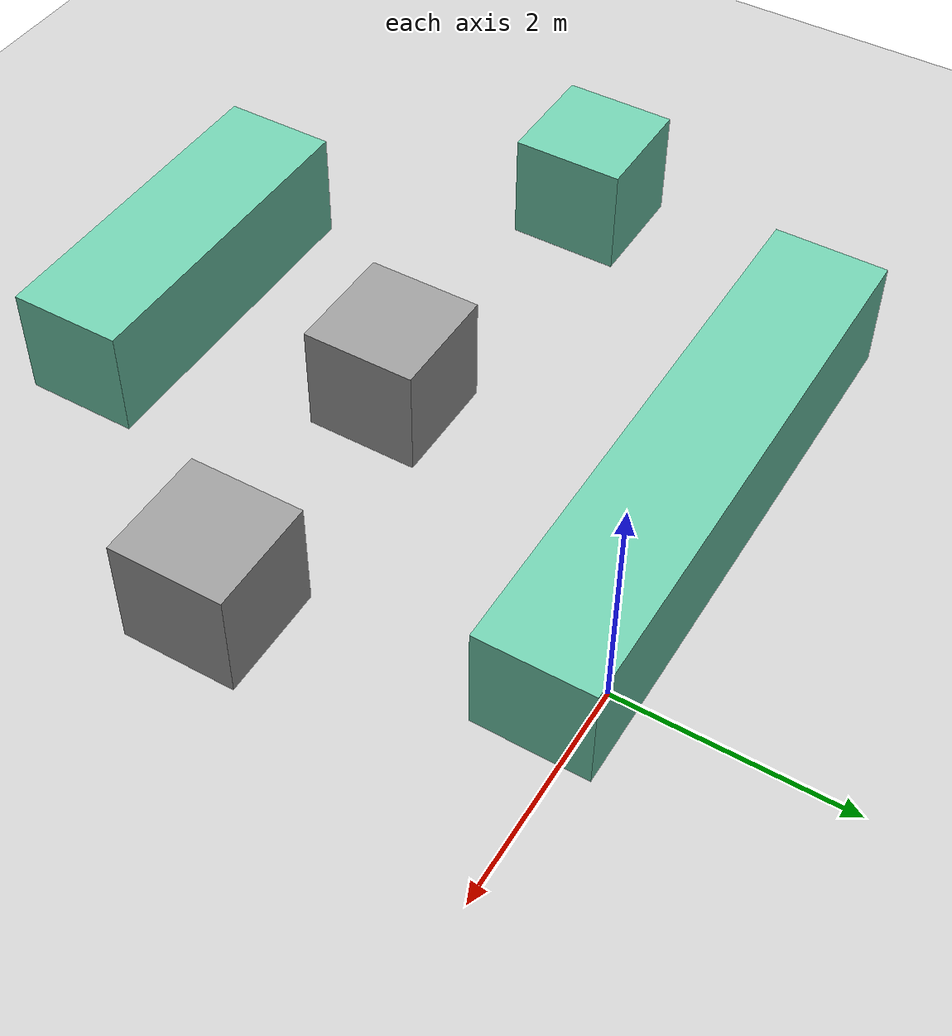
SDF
<sdf version="1.7">
 <world name="default">
  <light name="sun" type="directional">
   <pose>0 0 10 0 -0 0</pose>
   <diffuse>0.8 0.8 0.8 1</diffuse>
   <specular>0.2 0.2 0.2 1</specular>
   <attenuation>
    <range>1000</range>
    <constant>0.9</constant>
    <linear>0.01</linear>
    <quadratic>0.001</quadratic>
   </attenuation>
   <direction>-0.5 0.1 -0.9</direction>
   <spot><inner_angle>0</inner_angle><outer_angle>0</outer_angle><falloff>0</falloff></spot>
  </light>
  <model name="ground_plane">
   <static>1</static>
   <link name="link">
    <collision name="collision">
     <geometry><plane><normal>0 0 1</normal><size>100 100</size></plane></geometry>
     <surface>
      <contact><collide_bitmask>65535</collide_bitmask></contact>
      <friction><ode><mu>100</mu><mu2>50</mu2></ode></friction>
     </surface>
    </collision>
    <visual name="visual">
     <cast_shadows>0</cast_shadows>
     <geometry><plane><normal>0 0 1</normal><size>100 100</size></plane></geometry>
     <material>
      <script><uri>file://media/materials/scripts/gazebo.material</uri><name>Gazebo/Grey</name></script>
     </material>
    </visual>
   </link>
  </model>
  <gravity>0 0 -9.8</gravity>
  <magnetic_field>6e-06 2.3e-05 -4.2e-05</magnetic_field>
  <atmosphere type="adiabatic"/>
  <physics type="ode">
   <max_step_size>0.001</max_step_size>
   <real_time_factor>1</real_time_factor>
   <real_time_update_rate>1000</real_time_update_rate>
  </physics>
  <scene><ambient>0.4 0.4 0.4 1</ambient><background>0.7 0.7 0.7 1</background><shadows>1</shadows></scene>
  <spherical_coordinates>
   <surface_model>EARTH_WGS84</surface_model>
   <latitude_deg>0</latitude_deg>
   <longitude_deg>0</longitude_deg>
   <elevation>0</elevation>
   <heading_deg>0</heading_deg>
  </spherical_coordinates>
  <model name="yesil_5">
   <pose>-1.77291 -0.250686 0 0 -0 0</pose>
   <link name="Wall_4">
    <collision name="Wall_4_Collision">
     <geometry><box><size>5 1 1</size></box></geometry>
     <pose>0 0 0.5 0 -0 0</pose>
    </collision>
    <visual name="Wall_4_Visual">
     <pose>0 0 0.5 0 -0 0</pose>
     <geometry><box><size>5 1 1</size></box></geometry>
     <material>
      <script><uri>file://media/materials/scripts/gazebo.material</uri><name>Gazebo/Grey</name></script>
      <ambient>0.435294 0.796078 0.67451 1</ambient>
     </material>
     <meta><layer>0</layer></meta>
    </visual>
   </link>
   <static>1</static>
  </model>
  <model name="yesil_3">
   <pose>-1.79711 -5.15196 0 0 -0 0</pose>
   <link name="Wall_6">
    <collision name="Wall_6_Collision">
     <geometry><box><size>3 1 1</size></box></geometry>
     <pose>0 0 0.5 0 -0 0</pose>
    </collision>
    <visual name="Wall_6_Visual">
     <pose>0 0 0.5 0 -0 0</pose>
     <geometry><box><size>3 1 1</size></box></geometry>
     <material>
      <script><uri>file://media/materials/scripts/gazebo.material</uri><name>Gazebo/Grey</name></script>
      <ambient>0.435294 0.796078 0.67451 1</ambient>
     </material>
     <meta><layer>0</layer></meta>
    </visual>
    <pose>0 0 0 0 -0 3.14159</pose>
   </link>
   <static>1</static>
  </model>
  <model name="yesil_1">
   <pose>-4.66847 -2.69871 0 0 -0 0</pose>
   <link name="Wall_8">
    <collision name="Wall_8_Collision">
     <geometry><box><size>1 1 1</size></box></geometry>
     <pose>0 0 0.5 0 -0 0</pose>
    </collision>
    <visual name="Wall_8_Visual">
     <pose>0 0 0.5 0 -0 0</pose>
     <geometry><box><size>1 1 1</size></box></geometry>
     <material>
      <script><uri>file://media/materials/scripts/gazebo.material</uri><name>Gazebo/Grey</name></script>
      <ambient>0.435294 0.796078 0.67451 1</ambient>
     </material>
     <meta><layer>0</layer></meta>
    </visual>
   </link>
   <static>1</static>
  </model>
  <model name="siyah_1">
   <pose>0.690695 -2.83097 0 0 -0 0.651148</pose>
   <link name="Wall_12">
    <collision name="Wall_12_Collision">
     <geometry><box><size>1.01 1 1</size></box></geometry>
     <pose>0 0 0.5 0 -0 0</pose>
    </collision>
    <visual name="Wall_12_Visual">
     <pose>0 0 0.5 0 -0 0</pose>
     <geometry><box><size>1.01 1 1</size></box></geometry>
     <material>
      <script><uri>file://media/materials/scripts/gazebo.material</uri><name>Gazebo/Grey</name></script>
      <ambient>0 0 0 1</ambient>
     </material>
     <meta><layer>0</layer></meta>
    </visual>
    <pose>0.1455 -0.1415 0 0 -0 -0.643501</pose>
   </link>
   <static>1</static>
  </model>
  <model name="beyaz_1">
   <pose>-3.54595 -1.45218 0 0 -0 0</pose>
   <link name="Wall_14">
    <collision name="Wall_14_Collision">
     <geometry><box><size>1.01 1 1</size></box></geometry>
     <pose>0 0 0.5 0 -0 0</pose>
    </collision>
    <visual name="Wall_14_Visual">
     <pose>0 0 0.5 0 -0 0</pose>
     <geometry><box><size>1.01 1 1</size></box></geometry>
     <material>
      <script><uri>file://media/materials/scripts/gazebo.material</uri><name>Gazebo/Grey</name></script>
      <ambient>1 1 1 1</ambient>
     </material>
     <meta><layer>0</layer></meta>
    </visual>
    <pose>1.89154 -1.45759 0 0 -0 3.14159</pose>
   </link>
   <static>1</static>
  </model>
 </world>
</sdf>
